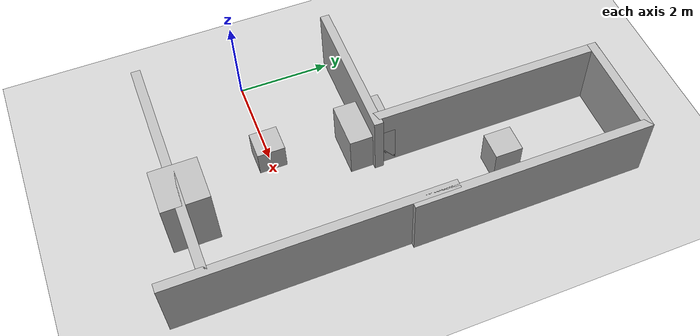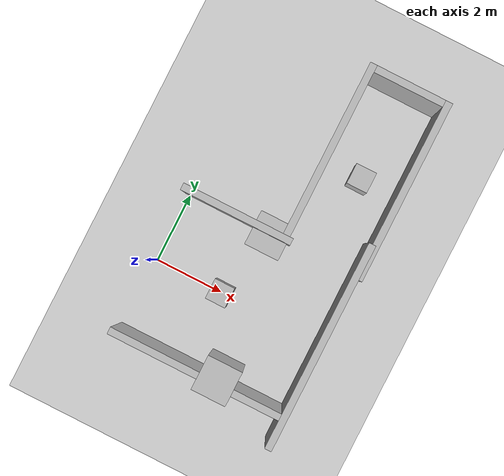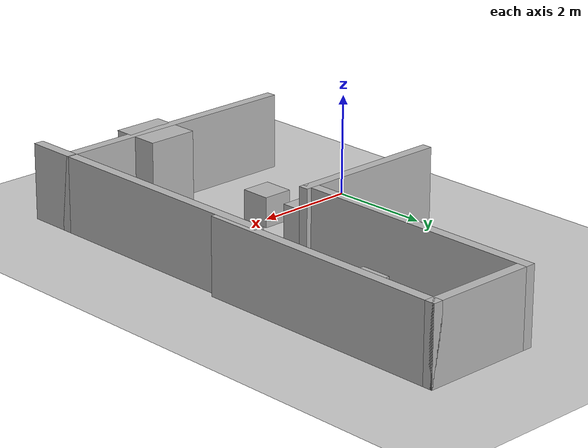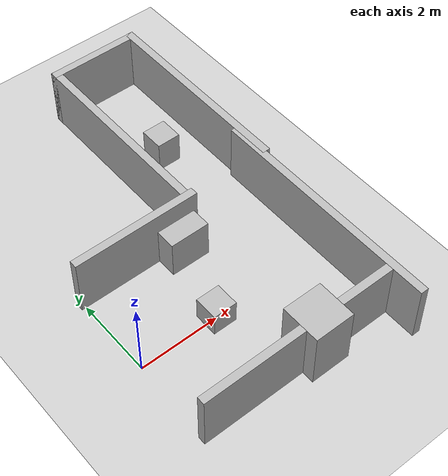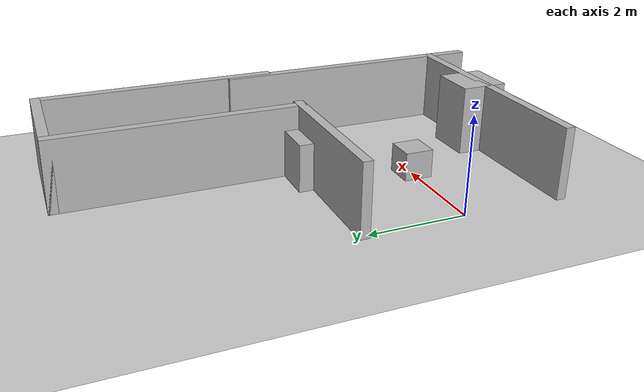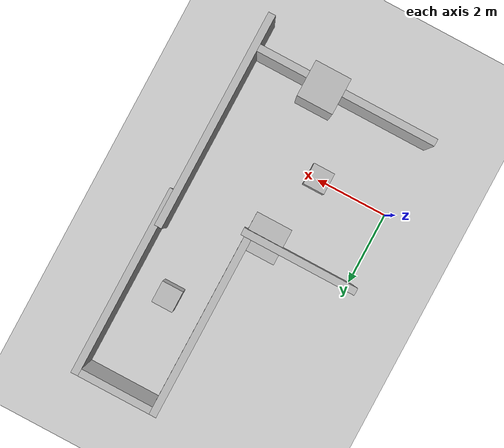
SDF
<?xml version="1.0" ?>

<sdf version="1.6">

  <world name="evrenos_test_world">

    <!-- Physics -->
    <physics name="default_physics" type="ode">
      <max_step_size>0.001</max_step_size>
      <real_time_factor>1.0</real_time_factor>
      <real_time_update_rate>1000.0</real_time_update_rate>
    </physics>

    <!-- Sun -->
    <include>
      <uri>model://sun</uri>
    </include>

    <!-- Ground -->
    <include>
      <uri>model://ground_plane</uri>
    </include>

    <!-- FRONT WALL                                        -->

    <model name="front_wall">

      <static>true</static>

      <pose>5.0 0.0 0.75 0 0 0</pose>

      <link name="link">

        <collision name="collision">
          <geometry>
            <box>
              <size>0.20 6.0 1.50</size>
            </box>
          </geometry>
        </collision>

        <visual name="visual">
          <geometry>
            <box>
              <size>0.20 6.0 1.50</size>
            </box>
          </geometry>
        </visual>

      </link>

    </model>

    <!-- LEFT OBSTACLE                                     -->

    <model name="left_box">

      <static>true</static>

      <pose>2.5 2.0 0.50 0 0 0</pose>

      <link name="link">

        <collision name="collision">
          <geometry>
            <box>
              <size>1.0 1.0 1.0</size>
            </box>
          </geometry>
        </collision>

        <visual name="visual">
          <geometry>
            <box>
              <size>1.0 1.0 1.0</size>
            </box>
          </geometry>
        </visual>

      </link>

    </model>

    <!-- RIGHT OBSTACLE                                    -->

    <model name="right_box">

      <static>true</static>

      <pose>3.0 -2.0 0.75 0 0 0</pose>

      <link name="link">

        <collision name="collision">
          <geometry>
            <box>
              <size>1.0 1.0 1.50</size>
            </box>
          </geometry>
        </collision>

        <visual name="visual">
          <geometry>
            <box>
              <size>1.0 1.0 1.50</size>
            </box>
          </geometry>
        </visual>

      </link>

    </model>

    <!-- CENTER SMALL OBSTACLE                             -->

    <model name="center_box">

      <static>true</static>

      <pose>2.0 0.0 0.30 0 0 0</pose>

      <link name="link">

        <collision name="collision">
          <geometry>
            <box>
              <size>0.60 0.60 0.60</size>
            </box>
          </geometry>
        </collision>

        <visual name="visual">
          <geometry>
            <box>
              <size>0.60 0.60 0.60</size>
            </box>
          </geometry>
        </visual>

      </link>

    </model>

    <!-- CORRIDOR WALLS - APPROACH LEG (leg A)             -->
    <!-- Corridor width: 4.0 m (y: -2.0 .. 2.0)            -->
    <!-- Left wall stops at x=3.1 to leave a turn opening  -->

    <model name="corridor_wall_left_leg_a">

      <static>true</static>

      <pose>1.5 2.1 0.75 0 0 0</pose>

      <link name="link">

        <collision name="collision">
          <geometry>
            <box>
              <size>3.2 0.2 1.50</size>
            </box>
          </geometry>
        </collision>

        <visual name="visual">
          <geometry>
            <box>
              <size>3.2 0.2 1.50</size>
            </box>
          </geometry>
        </visual>

      </link>

    </model>

    <model name="corridor_wall_right_leg_a">

      <static>true</static>

      <pose>2.5 -2.1 0.75 0 0 0</pose>

      <link name="link">

        <collision name="collision">
          <geometry>
            <box>
              <size>5.2 0.2 1.50</size>
            </box>
          </geometry>
        </collision>

        <visual name="visual">
          <geometry>
            <box>
              <size>5.2 0.2 1.50</size>
            </box>
          </geometry>
        </visual>

      </link>

    </model>

    <!-- LEFT TURN LEG (leg B)                             -->
    <!-- Opens off leg A between x=3.1 and x=5.0           -->
    <!-- Corridor width: 2.0 m (x: 3.0 .. 5.0)             -->

    <model name="corridor_wall_turn_west">

      <static>true</static>

      <pose>2.9 4.6 0.75 0 0 0</pose>

      <link name="link">

        <collision name="collision">
          <geometry>
            <box>
              <size>0.2 5.2 1.50</size>
            </box>
          </geometry>
        </collision>

        <visual name="visual">
          <geometry>
            <box>
              <size>0.2 5.2 1.50</size>
            </box>
          </geometry>
        </visual>

      </link>

    </model>

    <model name="corridor_wall_turn_east">

      <static>true</static>

      <pose>5.1 4.6 0.75 0 0 0</pose>

      <link name="link">

        <collision name="collision">
          <geometry>
            <box>
              <size>0.2 5.2 1.50</size>
            </box>
          </geometry>
        </collision>

        <visual name="visual">
          <geometry>
            <box>
              <size>0.2 5.2 1.50</size>
            </box>
          </geometry>
        </visual>

      </link>

    </model>

    <model name="corridor_turn_end_wall">

      <static>true</static>

      <pose>4.0 7.1 0.75 0 0 0</pose>

      <link name="link">

        <collision name="collision">
          <geometry>
            <box>
              <size>2.4 0.2 1.50</size>
            </box>
          </geometry>
        </collision>

        <visual name="visual">
          <geometry>
            <box>
              <size>2.4 0.2 1.50</size>
            </box>
          </geometry>
        </visual>

      </link>

    </model>

    <!-- TURN LEG OBSTACLE                                 -->

    <model name="turn_box">

      <static>true</static>

      <pose>4.0 4.5 0.40 0 0 0</pose>

      <link name="link">

        <collision name="collision">
          <geometry>
            <box>
              <size>0.60 0.60 0.80</size>
            </box>
          </geometry>
        </collision>

        <visual name="visual">
          <geometry>
            <box>
              <size>0.60 0.60 0.80</size>
            </box>
          </geometry>
        </visual>

      </link>

    </model>

  </world>

</sdf>
